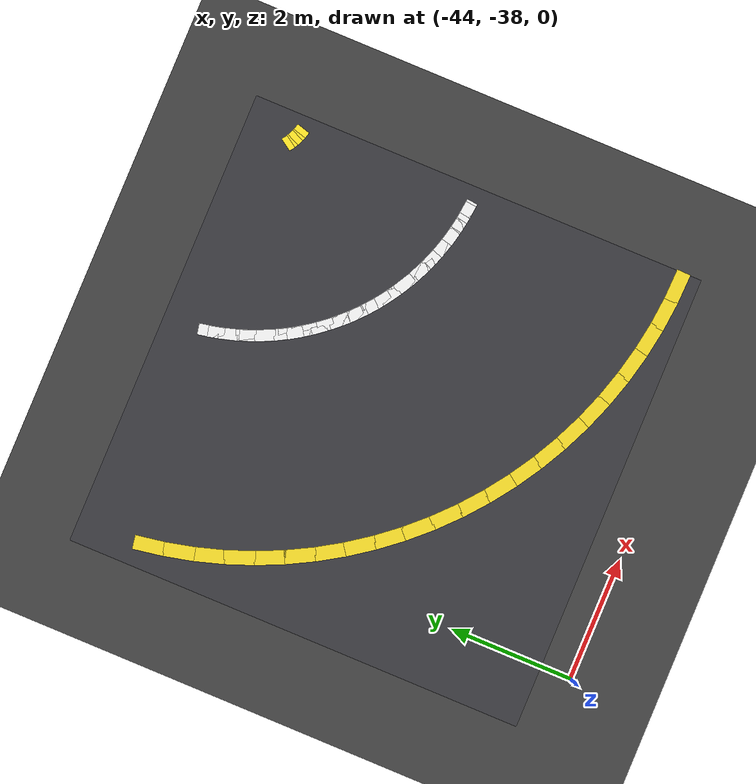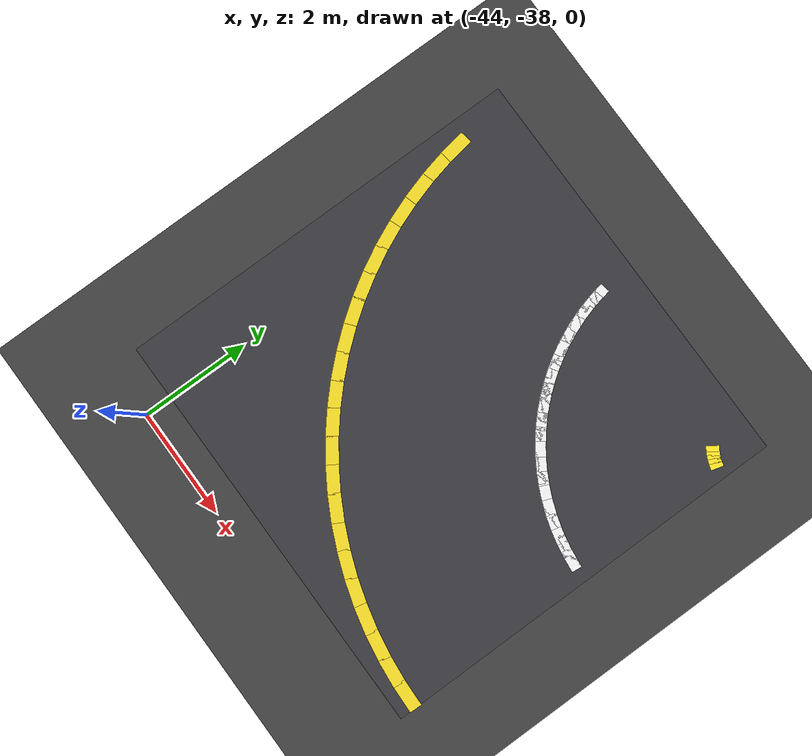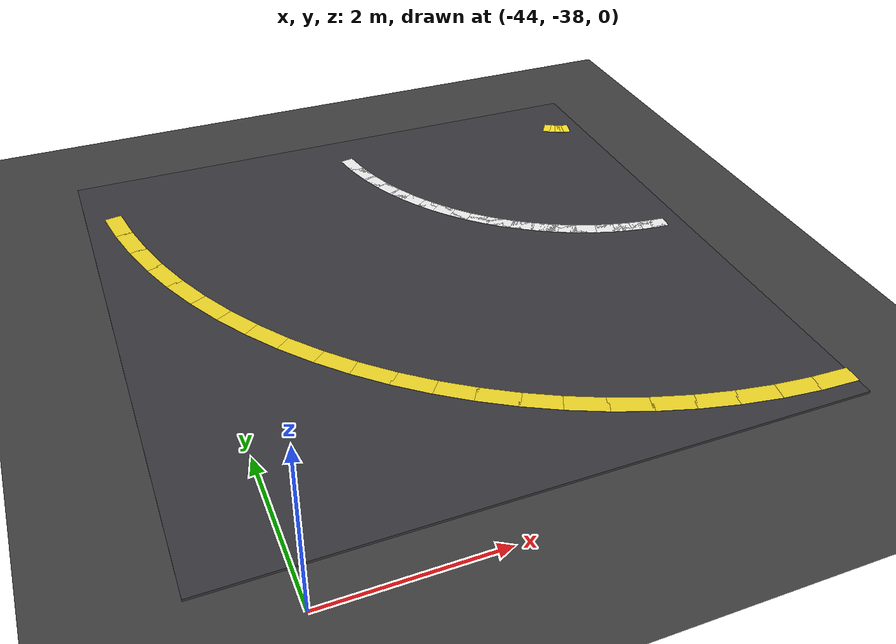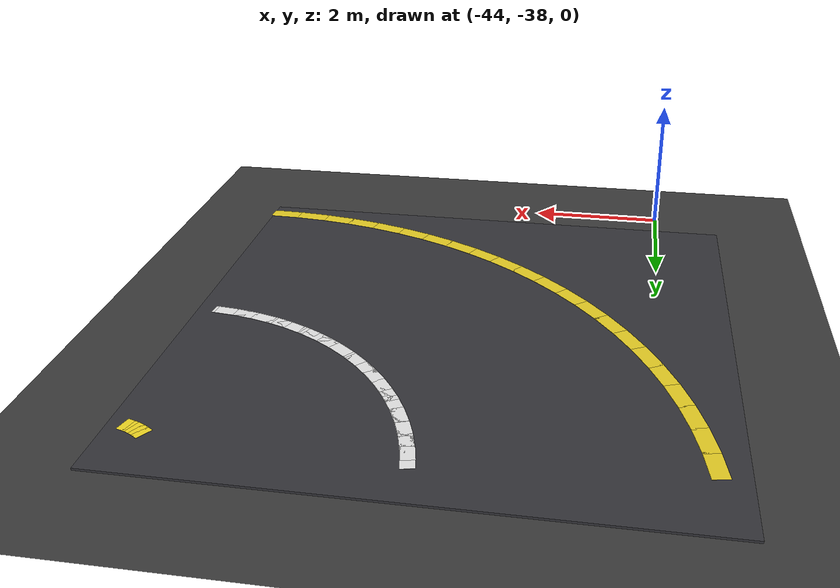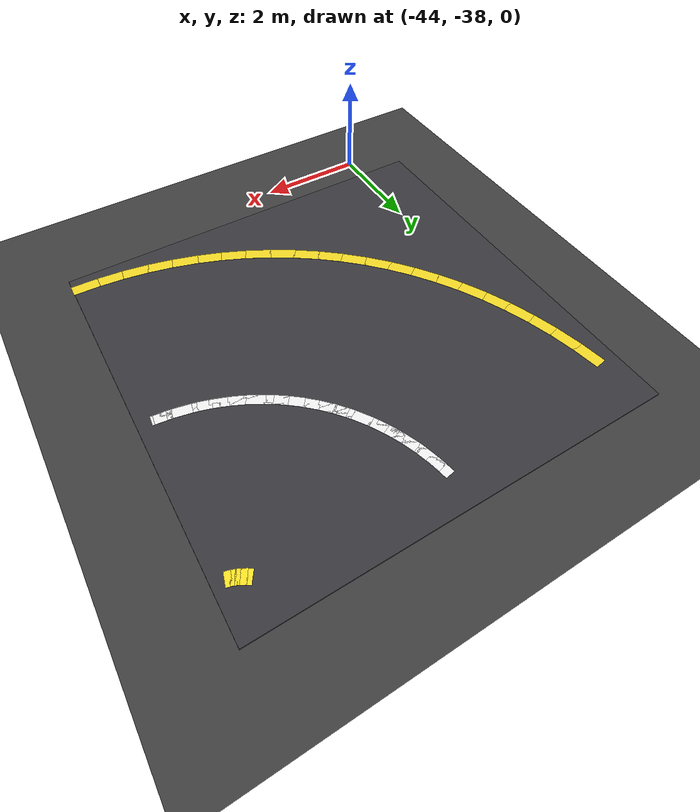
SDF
<sdf version="1.7">
 <world name="compact_city">
  <model name="ground_plane">
   <static>1</static>
   <pose>0 0 0.01 0 -0 0</pose>
   <link name="link">
    <collision name="collision">
     <geometry><plane><normal>0 0 1</normal><size>200 200</size></plane></geometry>
    </collision>
    <visual name="visual">
     <geometry><plane><normal>0 0 1</normal><size>200 200</size></plane></geometry>
     <material>
      <ambient>0.2 0.2 0.2 1</ambient>
      <diffuse>0.25 0.25 0.25 1</diffuse>
      <specular>0.1 0.1 0.1 1</specular>
     </material>
    </visual>
   </link>
  </model>
  <model name="road_tile_68">
   <static>1</static>
   <pose>-41.25 -33.75 0.015 0 -0 0</pose>
   <link name="link">
    <collision name="collision"><geometry><box><size>7.5 7.5 0.03</size></box></geometry></collision>
    <visual name="visual">
     <geometry><box><size>7.5 7.5 0.03</size></box></geometry>
     <material>
      <ambient>0.18 0.18 0.2 1</ambient>
      <diffuse>0.22 0.22 0.24 1</diffuse>
      <specular>0.1 0.1 0.1 1</specular>
     </material>
    </visual>
   </link>
  </model>
  <model name="ac_501">
   <static>1</static>
   <pose>-41.1521 -30.8515 0.038 0 0 -1.34169</pose>
   <link name="link">
    <visual name="v">
     <geometry><box><size>0.260117 0.18 0.002</size></box></geometry>
     <material><ambient>1 1 1 1</ambient><diffuse>0.95 0.95 0.95 1</diffuse></material>
    </visual>
   </link>
  </model>
  <model name="ac_502">
   <static>1</static>
   <pose>-41.0886 -31.0886 0.038 0 0 -1.27628</pose>
   <link name="link">
    <visual name="v">
     <geometry><box><size>0.260117 0.18 0.002</size></box></geometry>
     <material><ambient>1 1 1 1</ambient><diffuse>0.95 0.95 0.95 1</diffuse></material>
    </visual>
   </link>
  </model>
  <model name="ac_503">
   <static>1</static>
   <pose>-41.0097 -31.3209 0.038 0 0 -1.21079</pose>
   <link name="link">
    <visual name="v">
     <geometry><box><size>0.260117 0.18 0.002</size></box></geometry>
     <material><ambient>1 1 1 1</ambient><diffuse>0.95 0.95 0.95 1</diffuse></material>
    </visual>
   </link>
  </model>
  <model name="ac_504">
   <static>1</static>
   <pose>-40.9158 -31.5477 0.038 0 0 -1.14539</pose>
   <link name="link">
    <visual name="v">
     <geometry><box><size>0.260117 0.18 0.002</size></box></geometry>
     <material><ambient>1 1 1 1</ambient><diffuse>0.95 0.95 0.95 1</diffuse></material>
    </visual>
   </link>
  </model>
  <model name="ac_505">
   <static>1</static>
   <pose>-40.8072 -31.7677 0.038 0 0 -1.07988</pose>
   <link name="link">
    <visual name="v">
     <geometry><box><size>0.260117 0.18 0.002</size></box></geometry>
     <material><ambient>1 1 1 1</ambient><diffuse>0.95 0.95 0.95 1</diffuse></material>
    </visual>
   </link>
  </model>
  <model name="ac_506">
   <static>1</static>
   <pose>-40.6845 -31.9803 0.038 0 0 -1.01449</pose>
   <link name="link">
    <visual name="v">
     <geometry><box><size>0.260117 0.18 0.002</size></box></geometry>
     <material><ambient>1 1 1 1</ambient><diffuse>0.95 0.95 0.95 1</diffuse></material>
    </visual>
   </link>
  </model>
  <model name="ac_507">
   <static>1</static>
   <pose>-40.5481 -32.1843 0.038 0 0 -0.948985</pose>
   <link name="link">
    <visual name="v">
     <geometry><box><size>0.260117 0.18 0.002</size></box></geometry>
     <material><ambient>1 1 1 1</ambient><diffuse>0.95 0.95 0.95 1</diffuse></material>
    </visual>
   </link>
  </model>
  <model name="ac_508">
   <static>1</static>
   <pose>-40.3987 -32.379 0.038 0 0 -0.883585</pose>
   <link name="link">
    <visual name="v">
     <geometry><box><size>0.260117 0.18 0.002</size></box></geometry>
     <material><ambient>1 1 1 1</ambient><diffuse>0.95 0.95 0.95 1</diffuse></material>
    </visual>
   </link>
  </model>
  <model name="ac_509">
   <static>1</static>
   <pose>-40.2371 -32.5635 0.038 0 0 -0.818085</pose>
   <link name="link">
    <visual name="v">
     <geometry><box><size>0.260117 0.18 0.002</size></box></geometry>
     <material><ambient>1 1 1 1</ambient><diffuse>0.95 0.95 0.95 1</diffuse></material>
    </visual>
   </link>
  </model>
  <model name="ac_510">
   <static>1</static>
   <pose>-40.0635 -32.7371 0.038 0 0 -0.752685</pose>
   <link name="link">
    <visual name="v">
     <geometry><box><size>0.260117 0.18 0.002</size></box></geometry>
     <material><ambient>1 1 1 1</ambient><diffuse>0.95 0.95 0.95 1</diffuse></material>
    </visual>
   </link>
  </model>
  <model name="ac_511">
   <static>1</static>
   <pose>-39.879 -32.8987 0.038 0 0 -0.687185</pose>
   <link name="link">
    <visual name="v">
     <geometry><box><size>0.260117 0.18 0.002</size></box></geometry>
     <material><ambient>1 1 1 1</ambient><diffuse>0.95 0.95 0.95 1</diffuse></material>
    </visual>
   </link>
  </model>
  <model name="ac_512">
   <static>1</static>
   <pose>-39.6843 -33.0481 0.038 0 0 -0.621785</pose>
   <link name="link">
    <visual name="v">
     <geometry><box><size>0.260117 0.18 0.002</size></box></geometry>
     <material><ambient>1 1 1 1</ambient><diffuse>0.95 0.95 0.95 1</diffuse></material>
    </visual>
   </link>
  </model>
  <model name="ac_513">
   <static>1</static>
   <pose>-39.4803 -33.1845 0.038 0 0 -0.556285</pose>
   <link name="link">
    <visual name="v">
     <geometry><box><size>0.260117 0.18 0.002</size></box></geometry>
     <material><ambient>1 1 1 1</ambient><diffuse>0.95 0.95 0.95 1</diffuse></material>
    </visual>
   </link>
  </model>
  <model name="ac_514">
   <static>1</static>
   <pose>-39.2677 -33.3072 0.038 0 0 -0.490885</pose>
   <link name="link">
    <visual name="v">
     <geometry><box><size>0.260117 0.18 0.002</size></box></geometry>
     <material><ambient>1 1 1 1</ambient><diffuse>0.95 0.95 0.95 1</diffuse></material>
    </visual>
   </link>
  </model>
  <model name="ac_515">
   <static>1</static>
   <pose>-39.0477 -33.4158 0.038 0 0 -0.425385</pose>
   <link name="link">
    <visual name="v">
     <geometry><box><size>0.260117 0.18 0.002</size></box></geometry>
     <material><ambient>1 1 1 1</ambient><diffuse>0.95 0.95 0.95 1</diffuse></material>
    </visual>
   </link>
  </model>
  <model name="ac_516">
   <static>1</static>
   <pose>-38.8209 -33.5097 0.038 0 0 -0.359985</pose>
   <link name="link">
    <visual name="v">
     <geometry><box><size>0.260117 0.18 0.002</size></box></geometry>
     <material><ambient>1 1 1 1</ambient><diffuse>0.95 0.95 0.95 1</diffuse></material>
    </visual>
   </link>
  </model>
  <model name="ac_517">
   <static>1</static>
   <pose>-38.5885 -33.5886 0.038 0 0 -0.294485</pose>
   <link name="link">
    <visual name="v">
     <geometry><box><size>0.260117 0.18 0.002</size></box></geometry>
     <material><ambient>1 1 1 1</ambient><diffuse>0.95 0.95 0.95 1</diffuse></material>
    </visual>
   </link>
  </model>
  <model name="ac_518">
   <static>1</static>
   <pose>-38.3516 -33.6521 0.038 0 0 -0.229085</pose>
   <link name="link">
    <visual name="v">
     <geometry><box><size>0.260117 0.18 0.002</size></box></geometry>
     <material><ambient>1 1 1 1</ambient><diffuse>0.95 0.95 0.95 1</diffuse></material>
    </visual>
   </link>
  </model>
  <model name="ac_519">
   <static>1</static>
   <pose>-38.1108 -33.6999 0.038 0 0 -0.163585</pose>
   <link name="link">
    <visual name="v">
     <geometry><box><size>0.260117 0.18 0.002</size></box></geometry>
     <material><ambient>1 1 1 1</ambient><diffuse>0.95 0.95 0.95 1</diffuse></material>
    </visual>
   </link>
  </model>
  <model name="ac_520">
   <static>1</static>
   <pose>-37.8675 -33.732 0.038 0 0 -0.098185</pose>
   <link name="link">
    <visual name="v">
     <geometry><box><size>0.260117 0.18 0.002</size></box></geometry>
     <material><ambient>1 1 1 1</ambient><diffuse>0.95 0.95 0.95 1</diffuse></material>
    </visual>
   </link>
  </model>
  <model name="ao_548">
   <static>1</static>
   <pose>-44.6039 -31.1729 0.038 0 0 -1.40718</pose>
   <link name="link">
    <visual name="v">
     <geometry><box><size>0.494712 0.225 0.002</size></box></geometry>
     <material><ambient>0.9 0.8 0.1 1</ambient><diffuse>0.95 0.85 0.15 1</diffuse></material>
    </visual>
   </link>
  </model>
  <model name="ao_549">
   <static>1</static>
   <pose>-44.5119 -31.635 0.038 0 0 -1.34169</pose>
   <link name="link">
    <visual name="v">
     <geometry><box><size>0.494712 0.225 0.002</size></box></geometry>
     <material><ambient>0.9 0.8 0.1 1</ambient><diffuse>0.95 0.85 0.15 1</diffuse></material>
    </visual>
   </link>
  </model>
  <model name="ao_550">
   <static>1</static>
   <pose>-44.3899 -32.0901 0.038 0 0 -1.27628</pose>
   <link name="link">
    <visual name="v">
     <geometry><box><size>0.494712 0.225 0.002</size></box></geometry>
     <material><ambient>0.9 0.8 0.1 1</ambient><diffuse>0.95 0.85 0.15 1</diffuse></material>
    </visual>
   </link>
  </model>
  <model name="ao_551">
   <static>1</static>
   <pose>-44.2385 -32.5362 0.038 0 0 -1.21079</pose>
   <link name="link">
    <visual name="v">
     <geometry><box><size>0.494712 0.225 0.002</size></box></geometry>
     <material><ambient>0.9 0.8 0.1 1</ambient><diffuse>0.95 0.85 0.15 1</diffuse></material>
    </visual>
   </link>
  </model>
  <model name="ao_552">
   <static>1</static>
   <pose>-44.0581 -32.9715 0.038 0 0 -1.14539</pose>
   <link name="link">
    <visual name="v">
     <geometry><box><size>0.494712 0.225 0.002</size></box></geometry>
     <material><ambient>0.9 0.8 0.1 1</ambient><diffuse>0.95 0.85 0.15 1</diffuse></material>
    </visual>
   </link>
  </model>
  <model name="ao_553">
   <static>1</static>
   <pose>-43.8498 -33.3941 0.038 0 0 -1.07988</pose>
   <link name="link">
    <visual name="v">
     <geometry><box><size>0.494712 0.225 0.002</size></box></geometry>
     <material><ambient>0.9 0.8 0.1 1</ambient><diffuse>0.95 0.85 0.15 1</diffuse></material>
    </visual>
   </link>
  </model>
  <model name="ao_554">
   <static>1</static>
   <pose>-43.6143 -33.8021 0.038 0 0 -1.01449</pose>
   <link name="link">
    <visual name="v">
     <geometry><box><size>0.494712 0.225 0.002</size></box></geometry>
     <material><ambient>0.9 0.8 0.1 1</ambient><diffuse>0.95 0.85 0.15 1</diffuse></material>
    </visual>
   </link>
  </model>
  <model name="ao_555">
   <static>1</static>
   <pose>-43.3526 -34.1938 0.038 0 0 -0.948985</pose>
   <link name="link">
    <visual name="v">
     <geometry><box><size>0.494712 0.225 0.002</size></box></geometry>
     <material><ambient>0.9 0.8 0.1 1</ambient><diffuse>0.95 0.85 0.15 1</diffuse></material>
    </visual>
   </link>
  </model>
  <model name="ao_556">
   <static>1</static>
   <pose>-43.0658 -34.5677 0.038 0 0 -0.883585</pose>
   <link name="link">
    <visual name="v">
     <geometry><box><size>0.494712 0.225 0.002</size></box></geometry>
     <material><ambient>0.9 0.8 0.1 1</ambient><diffuse>0.95 0.85 0.15 1</diffuse></material>
    </visual>
   </link>
  </model>
  <model name="ao_557">
   <static>1</static>
   <pose>-42.755 -34.9218 0.038 0 0 -0.818085</pose>
   <link name="link">
    <visual name="v">
     <geometry><box><size>0.494712 0.225 0.002</size></box></geometry>
     <material><ambient>0.9 0.8 0.1 1</ambient><diffuse>0.95 0.85 0.15 1</diffuse></material>
    </visual>
   </link>
  </model>
  <model name="ao_558">
   <static>1</static>
   <pose>-42.4218 -35.255 0.038 0 0 -0.752685</pose>
   <link name="link">
    <visual name="v">
     <geometry><box><size>0.494712 0.225 0.002</size></box></geometry>
     <material><ambient>0.9 0.8 0.1 1</ambient><diffuse>0.95 0.85 0.15 1</diffuse></material>
    </visual>
   </link>
  </model>
  <model name="ao_559">
   <static>1</static>
   <pose>-42.0677 -35.5658 0.038 0 0 -0.687185</pose>
   <link name="link">
    <visual name="v">
     <geometry><box><size>0.494712 0.225 0.002</size></box></geometry>
     <material><ambient>0.9 0.8 0.1 1</ambient><diffuse>0.95 0.85 0.15 1</diffuse></material>
    </visual>
   </link>
  </model>
  <model name="ao_560">
   <static>1</static>
   <pose>-41.6938 -35.8526 0.038 0 0 -0.621785</pose>
   <link name="link">
    <visual name="v">
     <geometry><box><size>0.494712 0.225 0.002</size></box></geometry>
     <material><ambient>0.9 0.8 0.1 1</ambient><diffuse>0.95 0.85 0.15 1</diffuse></material>
    </visual>
   </link>
  </model>
  <model name="ao_561">
   <static>1</static>
   <pose>-41.3021 -36.1143 0.038 0 0 -0.556285</pose>
   <link name="link">
    <visual name="v">
     <geometry><box><size>0.494712 0.225 0.002</size></box></geometry>
     <material><ambient>0.9 0.8 0.1 1</ambient><diffuse>0.95 0.85 0.15 1</diffuse></material>
    </visual>
   </link>
  </model>
  <model name="ao_562">
   <static>1</static>
   <pose>-40.8941 -36.3498 0.038 0 0 -0.490885</pose>
   <link name="link">
    <visual name="v">
     <geometry><box><size>0.494712 0.225 0.002</size></box></geometry>
     <material><ambient>0.9 0.8 0.1 1</ambient><diffuse>0.95 0.85 0.15 1</diffuse></material>
    </visual>
   </link>
  </model>
  <model name="ao_563">
   <static>1</static>
   <pose>-40.4715 -36.5581 0.038 0 0 -0.425385</pose>
   <link name="link">
    <visual name="v">
     <geometry><box><size>0.494712 0.225 0.002</size></box></geometry>
     <material><ambient>0.9 0.8 0.1 1</ambient><diffuse>0.95 0.85 0.15 1</diffuse></material>
    </visual>
   </link>
  </model>
  <model name="ao_564">
   <static>1</static>
   <pose>-40.0362 -36.7385 0.038 0 0 -0.359985</pose>
   <link name="link">
    <visual name="v">
     <geometry><box><size>0.494712 0.225 0.002</size></box></geometry>
     <material><ambient>0.9 0.8 0.1 1</ambient><diffuse>0.95 0.85 0.15 1</diffuse></material>
    </visual>
   </link>
  </model>
  <model name="ao_565">
   <static>1</static>
   <pose>-39.5901 -36.8899 0.038 0 0 -0.294485</pose>
   <link name="link">
    <visual name="v">
     <geometry><box><size>0.494712 0.225 0.002</size></box></geometry>
     <material><ambient>0.9 0.8 0.1 1</ambient><diffuse>0.95 0.85 0.15 1</diffuse></material>
    </visual>
   </link>
  </model>
  <model name="ao_566">
   <static>1</static>
   <pose>-39.135 -37.0119 0.038 0 0 -0.229085</pose>
   <link name="link">
    <visual name="v">
     <geometry><box><size>0.494712 0.225 0.002</size></box></geometry>
     <material><ambient>0.9 0.8 0.1 1</ambient><diffuse>0.95 0.85 0.15 1</diffuse></material>
    </visual>
   </link>
  </model>
  <model name="ao_567">
   <static>1</static>
   <pose>-38.6728 -37.1039 0.038 0 0 -0.163585</pose>
   <link name="link">
    <visual name="v">
     <geometry><box><size>0.494712 0.225 0.002</size></box></geometry>
     <material><ambient>0.9 0.8 0.1 1</ambient><diffuse>0.95 0.85 0.15 1</diffuse></material>
    </visual>
   </link>
  </model>
  <model name="ao_568">
   <static>1</static>
   <pose>-38.2058 -37.1653 0.038 0 0 -0.098185</pose>
   <link name="link">
    <visual name="v">
     <geometry><box><size>0.494712 0.225 0.002</size></box></geometry>
     <material><ambient>0.9 0.8 0.1 1</ambient><diffuse>0.95 0.85 0.15 1</diffuse></material>
    </visual>
   </link>
  </model>
  <model name="ao_569">
   <static>1</static>
   <pose>-37.7356 -37.1961 0.038 0 0 -0.032685</pose>
   <link name="link">
    <visual name="v">
     <geometry><box><size>0.494712 0.225 0.002</size></box></geometry>
     <material><ambient>0.9 0.8 0.1 1</ambient><diffuse>0.95 0.85 0.15 1</diffuse></material>
    </visual>
   </link>
  </model>
  <model name="arc_c_327">
   <static>1</static>
   <pose>-41.1752 -30.7309 0.038 0 0 -1.3744</pose>
   <link name="link">
    <visual name="visual">
     <geometry><box><size>0.324449 0.18 0.002</size></box></geometry>
     <material><ambient>1 1 1 1</ambient><diffuse>0.95 0.95 0.95 1</diffuse></material>
    </visual>
   </link>
  </model>
  <model name="arc_c_328">
   <static>1</static>
   <pose>-41.1065 -31.0172 0.038 0 0 -1.2959</pose>
   <link name="link">
    <visual name="visual">
     <geometry><box><size>0.324449 0.18 0.002</size></box></geometry>
     <material><ambient>1 1 1 1</ambient><diffuse>0.95 0.95 0.95 1</diffuse></material>
    </visual>
   </link>
  </model>
  <model name="arc_c_329">
   <static>1</static>
   <pose>-41.0155 -31.2969 0.038 0 0 -1.2174</pose>
   <link name="link">
    <visual name="visual">
     <geometry><box><size>0.324449 0.18 0.002</size></box></geometry>
     <material><ambient>1 1 1 1</ambient><diffuse>0.95 0.95 0.95 1</diffuse></material>
    </visual>
   </link>
  </model>
  <model name="arc_c_330">
   <static>1</static>
   <pose>-40.9029 -31.5687 0.038 0 0 -1.1388</pose>
   <link name="link">
    <visual name="visual">
     <geometry><box><size>0.324449 0.18 0.002</size></box></geometry>
     <material><ambient>1 1 1 1</ambient><diffuse>0.95 0.95 0.95 1</diffuse></material>
    </visual>
   </link>
  </model>
  <model name="arc_c_331">
   <static>1</static>
   <pose>-40.7694 -31.8309 0.038 0 0 -1.0603</pose>
   <link name="link">
    <visual name="visual">
     <geometry><box><size>0.324449 0.18 0.002</size></box></geometry>
     <material><ambient>1 1 1 1</ambient><diffuse>0.95 0.95 0.95 1</diffuse></material>
    </visual>
   </link>
  </model>
  <model name="arc_c_332">
   <static>1</static>
   <pose>-40.6157 -32.0819 0.038 0 0 -0.9817</pose>
   <link name="link">
    <visual name="visual">
     <geometry><box><size>0.324449 0.18 0.002</size></box></geometry>
     <material><ambient>1 1 1 1</ambient><diffuse>0.95 0.95 0.95 1</diffuse></material>
    </visual>
   </link>
  </model>
  <model name="arc_c_333">
   <static>1</static>
   <pose>-40.4427 -32.3197 0.038 0 0 -0.9032</pose>
   <link name="link">
    <visual name="visual">
     <geometry><box><size>0.324449 0.18 0.002</size></box></geometry>
     <material><ambient>1 1 1 1</ambient><diffuse>0.95 0.95 0.95 1</diffuse></material>
    </visual>
   </link>
  </model>
  <model name="arc_c_334">
   <static>1</static>
   <pose>-40.2516 -32.5436 0.038 0 0 -0.8247</pose>
   <link name="link">
    <visual name="visual">
     <geometry><box><size>0.324449 0.18 0.002</size></box></geometry>
     <material><ambient>1 1 1 1</ambient><diffuse>0.95 0.95 0.95 1</diffuse></material>
    </visual>
   </link>
  </model>
  <model name="arc_c_335">
   <static>1</static>
   <pose>-40.0436 -32.7516 0.038 0 0 -0.7461</pose>
   <link name="link">
    <visual name="visual">
     <geometry><box><size>0.324449 0.18 0.002</size></box></geometry>
     <material><ambient>1 1 1 1</ambient><diffuse>0.95 0.95 0.95 1</diffuse></material>
    </visual>
   </link>
  </model>
  <model name="arc_c_336">
   <static>1</static>
   <pose>-39.8197 -32.9427 0.038 0 0 -0.6676</pose>
   <link name="link">
    <visual name="visual">
     <geometry><box><size>0.324449 0.18 0.002</size></box></geometry>
     <material><ambient>1 1 1 1</ambient><diffuse>0.95 0.95 0.95 1</diffuse></material>
    </visual>
   </link>
  </model>
  <model name="arc_c_337">
   <static>1</static>
   <pose>-39.5819 -33.1157 0.038 0 0 -0.589</pose>
   <link name="link">
    <visual name="visual">
     <geometry><box><size>0.324449 0.18 0.002</size></box></geometry>
     <material><ambient>1 1 1 1</ambient><diffuse>0.95 0.95 0.95 1</diffuse></material>
    </visual>
   </link>
  </model>
  <model name="arc_c_338">
   <static>1</static>
   <pose>-39.3309 -33.2694 0.038 0 0 -0.5105</pose>
   <link name="link">
    <visual name="visual">
     <geometry><box><size>0.324449 0.18 0.002</size></box></geometry>
     <material><ambient>1 1 1 1</ambient><diffuse>0.95 0.95 0.95 1</diffuse></material>
    </visual>
   </link>
  </model>
  <model name="arc_c_339">
   <static>1</static>
   <pose>-39.0687 -33.4029 0.038 0 0 -0.432</pose>
   <link name="link">
    <visual name="visual">
     <geometry><box><size>0.324449 0.18 0.002</size></box></geometry>
     <material><ambient>1 1 1 1</ambient><diffuse>0.95 0.95 0.95 1</diffuse></material>
    </visual>
   </link>
  </model>
  <model name="arc_c_340">
   <static>1</static>
   <pose>-38.7969 -33.5155 0.038 0 0 -0.3534</pose>
   <link name="link">
    <visual name="visual">
     <geometry><box><size>0.324449 0.18 0.002</size></box></geometry>
     <material><ambient>1 1 1 1</ambient><diffuse>0.95 0.95 0.95 1</diffuse></material>
    </visual>
   </link>
  </model>
  <model name="arc_c_341">
   <static>1</static>
   <pose>-38.5172 -33.6065 0.038 0 0 -0.2749</pose>
   <link name="link">
    <visual name="visual">
     <geometry><box><size>0.324449 0.18 0.002</size></box></geometry>
     <material><ambient>1 1 1 1</ambient><diffuse>0.95 0.95 0.95 1</diffuse></material>
    </visual>
   </link>
  </model>
  <model name="arc_c_342">
   <static>1</static>
   <pose>-38.2309 -33.6752 0.038 0 0 -0.1963</pose>
   <link name="link">
    <visual name="visual">
     <geometry><box><size>0.324449 0.18 0.002</size></box></geometry>
     <material><ambient>1 1 1 1</ambient><diffuse>0.95 0.95 0.95 1</diffuse></material>
    </visual>
   </link>
  </model>
  <model name="arc_c_343">
   <static>1</static>
   <pose>-37.9404 -33.7212 0.038 0 0 -0.1178</pose>
   <link name="link">
    <visual name="visual">
     <geometry><box><size>0.324449 0.18 0.002</size></box></geometry>
     <material><ambient>1 1 1 1</ambient><diffuse>0.95 0.95 0.95 1</diffuse></material>
    </visual>
   </link>
  </model>
  <model name="arc_in_357">
   <static>1</static>
   <pose>-37.9997 -30.7477 0.038 0 0 -0.589</pose>
   <link name="link">
    <visual name="visual">
     <geometry><box><size>0.100668 0.225 0.002</size></box></geometry>
     <material><ambient>0.95 0.85 0.1 1</ambient><diffuse>1 0.9 0.15 1</diffuse></material>
    </visual>
   </link>
  </model>
  <model name="arc_in_358">
   <static>1</static>
   <pose>-37.9393 -30.7846 0.038 0 0 -0.5105</pose>
   <link name="link">
    <visual name="visual">
     <geometry><box><size>0.100668 0.225 0.002</size></box></geometry>
     <material><ambient>0.95 0.85 0.1 1</ambient><diffuse>1 0.9 0.15 1</diffuse></material>
    </visual>
   </link>
  </model>
  <model name="arc_in_359">
   <static>1</static>
   <pose>-37.8765 -30.8167 0.038 0 0 -0.432</pose>
   <link name="link">
    <visual name="visual">
     <geometry><box><size>0.100668 0.225 0.002</size></box></geometry>
     <material><ambient>0.95 0.85 0.1 1</ambient><diffuse>1 0.9 0.15 1</diffuse></material>
    </visual>
   </link>
  </model>
  <model name="arc_in_360">
   <static>1</static>
   <pose>-37.8113 -30.8438 0.038 0 0 -0.3534</pose>
   <link name="link">
    <visual name="visual">
     <geometry><box><size>0.100668 0.225 0.002</size></box></geometry>
     <material><ambient>0.95 0.85 0.1 1</ambient><diffuse>1 0.9 0.15 1</diffuse></material>
    </visual>
   </link>
  </model>
  <model name="arc_in_361">
   <static>1</static>
   <pose>-37.7441 -30.8655 0.038 0 0 -0.2749</pose>
   <link name="link">
    <visual name="visual">
     <geometry><box><size>0.100668 0.225 0.002</size></box></geometry>
     <material><ambient>0.95 0.85 0.1 1</ambient><diffuse>1 0.9 0.15 1</diffuse></material>
    </visual>
   </link>
  </model>
 </world>
</sdf>
